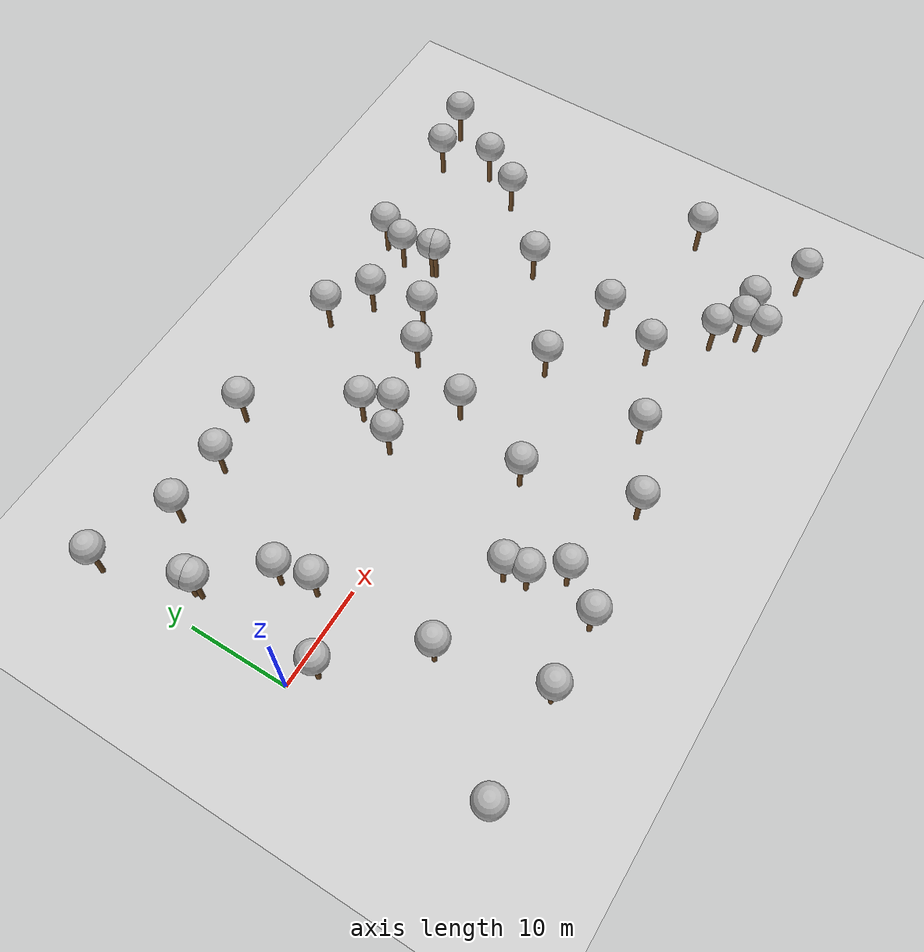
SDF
<sdf version='1.7'>
            <world name='default'>
                <light name='sun' type='directional'>
                <cast_shadows>1</cast_shadows>
                <pose>0 0 10 0 -0 0</pose>
                <diffuse>0.8 0.8 0.8 1</diffuse>
                <specular>0.2 0.2 0.2 1</specular>
                <attenuation>
                    <range>1000</range>
                    <constant>0.9</constant>
                    <linear>0.01</linear>
                    <quadratic>0.001</quadratic>
                </attenuation>
                <direction>-0.5 0.1 -0.9</direction>
                <spot>
                    <inner_angle>0</inner_angle>
                    <outer_angle>0</outer_angle>
                    <falloff>0</falloff>
                </spot>
                </light>
                <model name='ground_plane'>
                <static>1</static>
                <link name='link'>
                    <collision name='collision'>
                    <geometry>
                        <plane>
                        <normal>0 0 1</normal>
                        <size>100 100</size>
                        </plane>
                    </geometry>
                    <surface>
                        <contact>
                        <collide_bitmask>65535</collide_bitmask>
                        <ode/>
                        </contact>
                        <friction>
                        <ode>
                            <mu>100</mu>
                            <mu2>50</mu2>
                        </ode>
                        <torsional>
                            <ode/>
                        </torsional>
                        </friction>
                        <bounce/>
                    </surface>
                    <max_contacts>10</max_contacts>
                    </collision>
                    <visual name='visual'>
                    <cast_shadows>0</cast_shadows>
                    <geometry>
                        <plane>
                        <normal>0 0 1</normal>
                        <size>100 100</size>
                        </plane>
                    </geometry>
                    <material>
                        <script>
                        <uri>file://media/materials/scripts/gazebo.material</uri>
                        <name>Gazebo/Grey</name>
                        </script>
                    </material>
                    </visual>
                    <self_collide>0</self_collide>
                    <enable_wind>0</enable_wind>
                    <kinematic>0</kinematic>
                </link>
                </model>
                <gravity>0 0 -9.8</gravity>
                <magnetic_field>6e-06 2.3e-05 -4.2e-05</magnetic_field>
                <atmosphere type='adiabatic'/>
                <physics type='ode'>
                <max_step_size>0.001</max_step_size>
                <real_time_factor>1</real_time_factor>
                <real_time_update_rate>1000</real_time_update_rate>
                </physics>
                <scene>
                <ambient>0.4 0.4 0.4 1</ambient>
                <background>0.7 0.7 0.7 1</background>
                <shadows>1</shadows>
                </scene>
                <wind/>
                <spherical_coordinates>
                <surface_model>EARTH_WGS84</surface_model>
                <latitude_deg>0</latitude_deg>
                <longitude_deg>0</longitude_deg>
                <elevation>0</elevation>
                <heading_deg>0</heading_deg>
                </spherical_coordinates>

    <model name='tree_simple498'>
      <static>1</static>
      <link name='link'>
        <pose frame=''>0 0 0.1 0 -0 0</pose>
        <collision name='collision_trunk'>
          <pose frame=''>0 0 2 0 -0 0</pose>
          <geometry>
            <cylinder>
              <radius>0.25</radius>
              <length>4</length>
            </cylinder>
          </geometry>
        </collision>
        <collision name='collision_treetop'>
          <pose frame=''>0 0 5.2 0 -0 0</pose>
          <geometry>
            <sphere>
              <radius>1.5</radius>
            </sphere>
          </geometry>
        </collision>
        <visual name='trunk'>
          <pose frame=''>0 0 2 0 -0 0</pose>
          <geometry>
            <cylinder>
              <radius>0.25</radius>
              <length>4</length>
            </cylinder>
          </geometry>
          <material>
            <script>
              <uri>model://tree_simple/scripts</uri>
              <uri>model://tree_simple/materials/textures</uri>
              <name>TreeSimple/Trunk</name>
            </script>
          </material>
        </visual>
        <visual name='treetop'>
          <pose frame=''>0 0 5.2 0 -0 0</pose>
          <geometry>
            <sphere>
              <radius>1.5</radius>
            </sphere>
          </geometry>
          <material>
            <script>
              <uri>model://tree_simple/scripts</uri>
              <uri>model://tree_simple/materials/textures</uri>
              <name>TreeSimple/Treetop</name>
            </script>
          </material>
        </visual>
        <self_collide>0</self_collide>
        <kinematic>0</kinematic>
      </link>
      <pose frame=''>0.0 20.0 0 0 -0 0</pose>
    </model>
        <model name='tree_simple497'>
      <static>1</static>
      <link name='link'>
        <pose frame=''>0 0 0.1 0 -0 0</pose>
        <collision name='collision_trunk'>
          <pose frame=''>0 0 2 0 -0 0</pose>
          <geometry>
            <cylinder>
              <radius>0.25</radius>
              <length>4</length>
            </cylinder>
          </geometry>
        </collision>
        <collision name='collision_treetop'>
          <pose frame=''>0 0 5.2 0 -0 0</pose>
          <geometry>
            <sphere>
              <radius>1.5</radius>
            </sphere>
          </geometry>
        </collision>
        <visual name='trunk'>
          <pose frame=''>0 0 2 0 -0 0</pose>
          <geometry>
            <cylinder>
              <radius>0.25</radius>
              <length>4</length>
            </cylinder>
          </geometry>
          <material>
            <script>
              <uri>model://tree_simple/scripts</uri>
              <uri>model://tree_simple/materials/textures</uri>
              <name>TreeSimple/Trunk</name>
            </script>
          </material>
        </visual>
        <visual name='treetop'>
          <pose frame=''>0 0 5.2 0 -0 0</pose>
          <geometry>
            <sphere>
              <radius>1.5</radius>
            </sphere>
          </geometry>
          <material>
            <script>
              <uri>model://tree_simple/scripts</uri>
              <uri>model://tree_simple/materials/textures</uri>
              <name>TreeSimple/Treetop</name>
            </script>
          </material>
        </visual>
        <self_collide>0</self_collide>
        <kinematic>0</kinematic>
      </link>
      <pose frame=''>0.0 -20.0 0 0 -0 0</pose>
    </model>
        <model name='tree_simple496'>
      <static>1</static>
      <link name='link'>
        <pose frame=''>0 0 0.1 0 -0 0</pose>
        <collision name='collision_trunk'>
          <pose frame=''>0 0 2 0 -0 0</pose>
          <geometry>
            <cylinder>
              <radius>0.25</radius>
              <length>4</length>
            </cylinder>
          </geometry>
        </collision>
        <collision name='collision_treetop'>
          <pose frame=''>0 0 5.2 0 -0 0</pose>
          <geometry>
            <sphere>
              <radius>1.5</radius>
            </sphere>
          </geometry>
        </collision>
        <visual name='trunk'>
          <pose frame=''>0 0 2 0 -0 0</pose>
          <geometry>
            <cylinder>
              <radius>0.25</radius>
              <length>4</length>
            </cylinder>
          </geometry>
          <material>
            <script>
              <uri>model://tree_simple/scripts</uri>
              <uri>model://tree_simple/materials/textures</uri>
              <name>TreeSimple/Trunk</name>
            </script>
          </material>
        </visual>
        <visual name='treetop'>
          <pose frame=''>0 0 5.2 0 -0 0</pose>
          <geometry>
            <sphere>
              <radius>1.5</radius>
            </sphere>
          </geometry>
          <material>
            <script>
              <uri>model://tree_simple/scripts</uri>
              <uri>model://tree_simple/materials/textures</uri>
              <name>TreeSimple/Treetop</name>
            </script>
          </material>
        </visual>
        <self_collide>0</self_collide>
        <kinematic>0</kinematic>
      </link>
      <pose frame=''>60.0 20.0 0 0 -0 0</pose>
    </model>
        <model name='tree_simple495'>
      <static>1</static>
      <link name='link'>
        <pose frame=''>0 0 0.1 0 -0 0</pose>
        <collision name='collision_trunk'>
          <pose frame=''>0 0 2 0 -0 0</pose>
          <geometry>
            <cylinder>
              <radius>0.25</radius>
              <length>4</length>
            </cylinder>
          </geometry>
        </collision>
        <collision name='collision_treetop'>
          <pose frame=''>0 0 5.2 0 -0 0</pose>
          <geometry>
            <sphere>
              <radius>1.5</radius>
            </sphere>
          </geometry>
        </collision>
        <visual name='trunk'>
          <pose frame=''>0 0 2 0 -0 0</pose>
          <geometry>
            <cylinder>
              <radius>0.25</radius>
              <length>4</length>
            </cylinder>
          </geometry>
          <material>
            <script>
              <uri>model://tree_simple/scripts</uri>
              <uri>model://tree_simple/materials/textures</uri>
              <name>TreeSimple/Trunk</name>
            </script>
          </material>
        </visual>
        <visual name='treetop'>
          <pose frame=''>0 0 5.2 0 -0 0</pose>
          <geometry>
            <sphere>
              <radius>1.5</radius>
            </sphere>
          </geometry>
          <material>
            <script>
              <uri>model://tree_simple/scripts</uri>
              <uri>model://tree_simple/materials/textures</uri>
              <name>TreeSimple/Treetop</name>
            </script>
          </material>
        </visual>
        <self_collide>0</self_collide>
        <kinematic>0</kinematic>
      </link>
      <pose frame=''>60.0 -20.0 0 0 -0 0</pose>
    </model>
    <model name="tree_3_0"><pose frame="">54.29 -17.09 0 0 -0 0</pose><static>1</static><link name="link"><pose frame="">0 0 0.1 0 -0 0</pose><collision name="collision_trunk"><pose frame="">0 0 2 0 -0 0</pose><geometry><cylinder><radius>0.25</radius><length>4</length></cylinder></geometry></collision><collision name="collision_treetop"><pose frame="">0 0 5.2 0 -0 0</pose><geometry><sphere><radius>1.5</radius></sphere></geometry></collision><visual name="trunk"><pose frame="">0 0 2 0 -0 0</pose><geometry><cylinder><radius>0.25</radius><length>4</length></cylinder></geometry><material><script><uri>model://tree_simple/scripts</uri><uri>model://tree_simple/materials/textures</uri><name>TreeSimple/Trunk</name></script></material></visual><visual name="treetop"><pose frame="">0 0 5.2 0 -0 0</pose><geometry><sphere><radius>1.5</radius></sphere></geometry><material><script><uri>model://tree_simple/scripts</uri><uri>model://tree_simple/materials/textures</uri><name>TreeSimple/Treetop</name></script></material></visual><self_collide>0</self_collide><kinematic>0</kinematic></link></model><model name="tree_3_1"><pose frame="">7.58 17.01 0 0 -0 0</pose><static>1</static><link name="link"><pose frame="">0 0 0.1 0 -0 0</pose><collision name="collision_trunk"><pose frame="">0 0 2 0 -0 0</pose><geometry><cylinder><radius>0.25</radius><length>4</length></cylinder></geometry></collision><collision name="collision_treetop"><pose frame="">0 0 5.2 0 -0 0</pose><geometry><sphere><radius>1.5</radius></sphere></geometry></collision><visual name="trunk"><pose frame="">0 0 2 0 -0 0</pose><geometry><cylinder><radius>0.25</radius><length>4</length></cylinder></geometry><material><script><uri>model://tree_simple/scripts</uri><uri>model://tree_simple/materials/textures</uri><name>TreeSimple/Trunk</name></script></material></visual><visual name="treetop"><pose frame="">0 0 5.2 0 -0 0</pose><geometry><sphere><radius>1.5</radius></sphere></geometry><material><script><uri>model://tree_simple/scripts</uri><uri>model://tree_simple/materials/textures</uri><name>TreeSimple/Treetop</name></script></material></visual><self_collide>0</self_collide><kinematic>0</kinematic></link></model><model name="tree_3_2"><pose frame="">44.52 -10.88 0 0 -0 0</pose><static>1</static><link name="link"><pose frame="">0 0 0.1 0 -0 0</pose><collision name="collision_trunk"><pose frame="">0 0 2 0 -0 0</pose><geometry><cylinder><radius>0.25</radius><length>4</length></cylinder></geometry></collision><collision name="collision_treetop"><pose frame="">0 0 5.2 0 -0 0</pose><geometry><sphere><radius>1.5</radius></sphere></geometry></collision><visual name="trunk"><pose frame="">0 0 2 0 -0 0</pose><geometry><cylinder><radius>0.25</radius><length>4</length></cylinder></geometry><material><script><uri>model://tree_simple/scripts</uri><uri>model://tree_simple/materials/textures</uri><name>TreeSimple/Trunk</name></script></material></visual><visual name="treetop"><pose frame="">0 0 5.2 0 -0 0</pose><geometry><sphere><radius>1.5</radius></sphere></geometry><material><script><uri>model://tree_simple/scripts</uri><uri>model://tree_simple/materials/textures</uri><name>TreeSimple/Treetop</name></script></material></visual><self_collide>0</self_collide><kinematic>0</kinematic></link></model><model name="tree_3_3"><pose frame="">32.71 7.88 0 0 -0 0</pose><static>1</static><link name="link"><pose frame="">0 0 0.1 0 -0 0</pose><collision name="collision_trunk"><pose frame="">0 0 2 0 -0 0</pose><geometry><cylinder><radius>0.25</radius><length>4</length></cylinder></geometry></collision><collision name="collision_treetop"><pose frame="">0 0 5.2 0 -0 0</pose><geometry><sphere><radius>1.5</radius></sphere></geometry></collision><visual name="trunk"><pose frame="">0 0 2 0 -0 0</pose><geometry><cylinder><radius>0.25</radius><length>4</length></cylinder></geometry><material><script><uri>model://tree_simple/scripts</uri><uri>model://tree_simple/materials/textures</uri><name>TreeSimple/Trunk</name></script></material></visual><visual name="treetop"><pose frame="">0 0 5.2 0 -0 0</pose><geometry><sphere><radius>1.5</radius></sphere></geometry><material><script><uri>model://tree_simple/scripts</uri><uri>model://tree_simple/materials/textures</uri><name>TreeSimple/Treetop</name></script></material></visual><self_collide>0</self_collide><kinematic>0</kinematic></link></model><model name="tree_3_4"><pose frame="">29.39 -17.85 0 0 -0 0</pose><static>1</static><link name="link"><pose frame="">0 0 0.1 0 -0 0</pose><collision name="collision_trunk"><pose frame="">0 0 2 0 -0 0</pose><geometry><cylinder><radius>0.25</radius><length>4</length></cylinder></geometry></collision><collision name="collision_treetop"><pose frame="">0 0 5.2 0 -0 0</pose><geometry><sphere><radius>1.5</radius></sphere></geometry></collision><visual name="trunk"><pose frame="">0 0 2 0 -0 0</pose><geometry><cylinder><radius>0.25</radius><length>4</length></cylinder></geometry><material><script><uri>model://tree_simple/scripts</uri><uri>model://tree_simple/materials/textures</uri><name>TreeSimple/Trunk</name></script></material></visual><visual name="treetop"><pose frame="">0 0 5.2 0 -0 0</pose><geometry><sphere><radius>1.5</radius></sphere></geometry><material><script><uri>model://tree_simple/scripts</uri><uri>model://tree_simple/materials/textures</uri><name>TreeSimple/Treetop</name></script></material></visual><self_collide>0</self_collide><kinematic>0</kinematic></link></model><model name="tree_3_5"><pose frame="">2.56 11.59 0 0 -0 0</pose><static>1</static><link name="link"><pose frame="">0 0 0.1 0 -0 0</pose><collision name="collision_trunk"><pose frame="">0 0 2 0 -0 0</pose><geometry><cylinder><radius>0.25</radius><length>4</length></cylinder></geometry></collision><collision name="collision_treetop"><pose frame="">0 0 5.2 0 -0 0</pose><geometry><sphere><radius>1.5</radius></sphere></geometry></collision><visual name="trunk"><pose frame="">0 0 2 0 -0 0</pose><geometry><cylinder><radius>0.25</radius><length>4</length></cylinder></geometry><material><script><uri>model://tree_simple/scripts</uri><uri>model://tree_simple/materials/textures</uri><name>TreeSimple/Trunk</name></script></material></visual><visual name="treetop"><pose frame="">0 0 5.2 0 -0 0</pose><geometry><sphere><radius>1.5</radius></sphere></geometry><material><script><uri>model://tree_simple/scripts</uri><uri>model://tree_simple/materials/textures</uri><name>TreeSimple/Treetop</name></script></material></visual><self_collide>0</self_collide><kinematic>0</kinematic></link></model><model name="tree_3_6"><pose frame="">19.0 18.43 0 0 -0 0</pose><static>1</static><link name="link"><pose frame="">0 0 0.1 0 -0 0</pose><collision name="collision_trunk"><pose frame="">0 0 2 0 -0 0</pose><geometry><cylinder><radius>0.25</radius><length>4</length></cylinder></geometry></collision><collision name="collision_treetop"><pose frame="">0 0 5.2 0 -0 0</pose><geometry><sphere><radius>1.5</radius></sphere></geometry></collision><visual name="trunk"><pose frame="">0 0 2 0 -0 0</pose><geometry><cylinder><radius>0.25</radius><length>4</length></cylinder></geometry><material><script><uri>model://tree_simple/scripts</uri><uri>model://tree_simple/materials/textures</uri><name>TreeSimple/Trunk</name></script></material></visual><visual name="treetop"><pose frame="">0 0 5.2 0 -0 0</pose><geometry><sphere><radius>1.5</radius></sphere></geometry><material><script><uri>model://tree_simple/scripts</uri><uri>model://tree_simple/materials/textures</uri><name>TreeSimple/Treetop</name></script></material></visual><self_collide>0</self_collide><kinematic>0</kinematic></link></model><model name="tree_3_7"><pose frame="">17.84 -10.69 0 0 -0 0</pose><static>1</static><link name="link"><pose frame="">0 0 0.1 0 -0 0</pose><collision name="collision_trunk"><pose frame="">0 0 2 0 -0 0</pose><geometry><cylinder><radius>0.25</radius><length>4</length></cylinder></geometry></collision><collision name="collision_treetop"><pose frame="">0 0 5.2 0 -0 0</pose><geometry><sphere><radius>1.5</radius></sphere></geometry></collision><visual name="trunk"><pose frame="">0 0 2 0 -0 0</pose><geometry><cylinder><radius>0.25</radius><length>4</length></cylinder></geometry><material><script><uri>model://tree_simple/scripts</uri><uri>model://tree_simple/materials/textures</uri><name>TreeSimple/Trunk</name></script></material></visual><visual name="treetop"><pose frame="">0 0 5.2 0 -0 0</pose><geometry><sphere><radius>1.5</radius></sphere></geometry><material><script><uri>model://tree_simple/scripts</uri><uri>model://tree_simple/materials/textures</uri><name>TreeSimple/Treetop</name></script></material></visual><self_collide>0</self_collide><kinematic>0</kinematic></link></model><model name="tree_3_8"><pose frame="">51.67 -19.39 0 0 -0 0</pose><static>1</static><link name="link"><pose frame="">0 0 0.1 0 -0 0</pose><collision name="collision_trunk"><pose frame="">0 0 2 0 -0 0</pose><geometry><cylinder><radius>0.25</radius><length>4</length></cylinder></geometry></collision><collision name="collision_treetop"><pose frame="">0 0 5.2 0 -0 0</pose><geometry><sphere><radius>1.5</radius></sphere></geometry></collision><visual name="trunk"><pose frame="">0 0 2 0 -0 0</pose><geometry><cylinder><radius>0.25</radius><length>4</length></cylinder></geometry><material><script><uri>model://tree_simple/scripts</uri><uri>model://tree_simple/materials/textures</uri><name>TreeSimple/Trunk</name></script></material></visual><visual name="treetop"><pose frame="">0 0 5.2 0 -0 0</pose><geometry><sphere><radius>1.5</radius></sphere></geometry><material><script><uri>model://tree_simple/scripts</uri><uri>model://tree_simple/materials/textures</uri><name>TreeSimple/Treetop</name></script></material></visual><self_collide>0</self_collide><kinematic>0</kinematic></link></model><model name="tree_3_9"><pose frame="">26.33 6.29 0 0 -0 0</pose><static>1</static><link name="link"><pose frame="">0 0 0.1 0 -0 0</pose><collision name="collision_trunk"><pose frame="">0 0 2 0 -0 0</pose><geometry><cylinder><radius>0.25</radius><length>4</length></cylinder></geometry></collision><collision name="collision_treetop"><pose frame="">0 0 5.2 0 -0 0</pose><geometry><sphere><radius>1.5</radius></sphere></geometry></collision><visual name="trunk"><pose frame="">0 0 2 0 -0 0</pose><geometry><cylinder><radius>0.25</radius><length>4</length></cylinder></geometry><material><script><uri>model://tree_simple/scripts</uri><uri>model://tree_simple/materials/textures</uri><name>TreeSimple/Trunk</name></script></material></visual><visual name="treetop"><pose frame="">0 0 5.2 0 -0 0</pose><geometry><sphere><radius>1.5</radius></sphere></geometry><material><script><uri>model://tree_simple/scripts</uri><uri>model://tree_simple/materials/textures</uri><name>TreeSimple/Treetop</name></script></material></visual><self_collide>0</self_collide><kinematic>0</kinematic></link></model><model name="tree_3_10"><pose frame="">36.91 9.98 0 0 -0 0</pose><static>1</static><link name="link"><pose frame="">0 0 0.1 0 -0 0</pose><collision name="collision_trunk"><pose frame="">0 0 2 0 -0 0</pose><geometry><cylinder><radius>0.25</radius><length>4</length></cylinder></geometry></collision><collision name="collision_treetop"><pose frame="">0 0 5.2 0 -0 0</pose><geometry><sphere><radius>1.5</radius></sphere></geometry></collision><visual name="trunk"><pose frame="">0 0 2 0 -0 0</pose><geometry><cylinder><radius>0.25</radius><length>4</length></cylinder></geometry><material><script><uri>model://tree_simple/scripts</uri><uri>model://tree_simple/materials/textures</uri><name>TreeSimple/Trunk</name></script></material></visual><visual name="treetop"><pose frame="">0 0 5.2 0 -0 0</pose><geometry><sphere><radius>1.5</radius></sphere></geometry><material><script><uri>model://tree_simple/scripts</uri><uri>model://tree_simple/materials/textures</uri><name>TreeSimple/Treetop</name></script></material></visual><self_collide>0</self_collide><kinematic>0</kinematic></link></model><model name="tree_3_11"><pose frame="">42.86 12.26 0 0 -0 0</pose><static>1</static><link name="link"><pose frame="">0 0 0.1 0 -0 0</pose><collision name="collision_trunk"><pose frame="">0 0 2 0 -0 0</pose><geometry><cylinder><radius>0.25</radius><length>4</length></cylinder></geometry></collision><collision name="collision_treetop"><pose frame="">0 0 5.2 0 -0 0</pose><geometry><sphere><radius>1.5</radius></sphere></geometry></collision><visual name="trunk"><pose frame="">0 0 2 0 -0 0</pose><geometry><cylinder><radius>0.25</radius><length>4</length></cylinder></geometry><material><script><uri>model://tree_simple/scripts</uri><uri>model://tree_simple/materials/textures</uri><name>TreeSimple/Trunk</name></script></material></visual><visual name="treetop"><pose frame="">0 0 5.2 0 -0 0</pose><geometry><sphere><radius>1.5</radius></sphere></geometry><material><script><uri>model://tree_simple/scripts</uri><uri>model://tree_simple/materials/textures</uri><name>TreeSimple/Treetop</name></script></material></visual><self_collide>0</self_collide><kinematic>0</kinematic></link></model><model name="tree_3_12"><pose frame="">49.38 -15.42 0 0 -0 0</pose><static>1</static><link name="link"><pose frame="">0 0 0.1 0 -0 0</pose><collision name="collision_trunk"><pose frame="">0 0 2 0 -0 0</pose><geometry><cylinder><radius>0.25</radius><length>4</length></cylinder></geometry></collision><collision name="collision_treetop"><pose frame="">0 0 5.2 0 -0 0</pose><geometry><sphere><radius>1.5</radius></sphere></geometry></collision><visual name="trunk"><pose frame="">0 0 2 0 -0 0</pose><geometry><cylinder><radius>0.25</radius><length>4</length></cylinder></geometry><material><script><uri>model://tree_simple/scripts</uri><uri>model://tree_simple/materials/textures</uri><name>TreeSimple/Trunk</name></script></material></visual><visual name="treetop"><pose frame="">0 0 5.2 0 -0 0</pose><geometry><sphere><radius>1.5</radius></sphere></geometry><material><script><uri>model://tree_simple/scripts</uri><uri>model://tree_simple/materials/textures</uri><name>TreeSimple/Treetop</name></script></material></visual><self_collide>0</self_collide><kinematic>0</kinematic></link></model><model name="tree_3_13"><pose frame="">56.66 14.27 0 0 -0 0</pose><static>1</static><link name="link"><pose frame="">0 0 0.1 0 -0 0</pose><collision name="collision_trunk"><pose frame="">0 0 2 0 -0 0</pose><geometry><cylinder><radius>0.25</radius><length>4</length></cylinder></geometry></collision><collision name="collision_treetop"><pose frame="">0 0 5.2 0 -0 0</pose><geometry><sphere><radius>1.5</radius></sphere></geometry></collision><visual name="trunk"><pose frame="">0 0 2 0 -0 0</pose><geometry><cylinder><radius>0.25</radius><length>4</length></cylinder></geometry><material><script><uri>model://tree_simple/scripts</uri><uri>model://tree_simple/materials/textures</uri><name>TreeSimple/Trunk</name></script></material></visual><visual name="treetop"><pose frame="">0 0 5.2 0 -0 0</pose><geometry><sphere><radius>1.5</radius></sphere></geometry><material><script><uri>model://tree_simple/scripts</uri><uri>model://tree_simple/materials/textures</uri><name>TreeSimple/Treetop</name></script></material></visual><self_collide>0</self_collide><kinematic>0</kinematic></link></model><model name="tree_3_14"><pose frame="">36.46 -14.38 0 0 -0 0</pose><static>1</static><link name="link"><pose frame="">0 0 0.1 0 -0 0</pose><collision name="collision_trunk"><pose frame="">0 0 2 0 -0 0</pose><geometry><cylinder><radius>0.25</radius><length>4</length></cylinder></geometry></collision><collision name="collision_treetop"><pose frame="">0 0 5.2 0 -0 0</pose><geometry><sphere><radius>1.5</radius></sphere></geometry></collision><visual name="trunk"><pose frame="">0 0 2 0 -0 0</pose><geometry><cylinder><radius>0.25</radius><length>4</length></cylinder></geometry><material><script><uri>model://tree_simple/scripts</uri><uri>model://tree_simple/materials/textures</uri><name>TreeSimple/Trunk</name></script></material></visual><visual name="treetop"><pose frame="">0 0 5.2 0 -0 0</pose><geometry><sphere><radius>1.5</radius></sphere></geometry><material><script><uri>model://tree_simple/scripts</uri><uri>model://tree_simple/materials/textures</uri><name>TreeSimple/Treetop</name></script></material></visual><self_collide>0</self_collide><kinematic>0</kinematic></link></model><model name="tree_3_15"><pose frame="">8.58 -9.4 0 0 -0 0</pose><static>1</static><link name="link"><pose frame="">0 0 0.1 0 -0 0</pose><collision name="collision_trunk"><pose frame="">0 0 2 0 -0 0</pose><geometry><cylinder><radius>0.25</radius><length>4</length></cylinder></geometry></collision><collision name="collision_treetop"><pose frame="">0 0 5.2 0 -0 0</pose><geometry><sphere><radius>1.5</radius></sphere></geometry></collision><visual name="trunk"><pose frame="">0 0 2 0 -0 0</pose><geometry><cylinder><radius>0.25</radius><length>4</length></cylinder></geometry><material><script><uri>model://tree_simple/scripts</uri><uri>model://tree_simple/materials/textures</uri><name>TreeSimple/Trunk</name></script></material></visual><visual name="treetop"><pose frame="">0 0 5.2 0 -0 0</pose><geometry><sphere><radius>1.5</radius></sphere></geometry><material><script><uri>model://tree_simple/scripts</uri><uri>model://tree_simple/materials/textures</uri><name>TreeSimple/Treetop</name></script></material></visual><self_collide>0</self_collide><kinematic>0</kinematic></link></model><model name="tree_3_16"><pose frame="">42.22 15.74 0 0 -0 0</pose><static>1</static><link name="link"><pose frame="">0 0 0.1 0 -0 0</pose><collision name="collision_trunk"><pose frame="">0 0 2 0 -0 0</pose><geometry><cylinder><radius>0.25</radius><length>4</length></cylinder></geometry></collision><collision name="collision_treetop"><pose frame="">0 0 5.2 0 -0 0</pose><geometry><sphere><radius>1.5</radius></sphere></geometry></collision><visual name="trunk"><pose frame="">0 0 2 0 -0 0</pose><geometry><cylinder><radius>0.25</radius><length>4</length></cylinder></geometry><material><script><uri>model://tree_simple/scripts</uri><uri>model://tree_simple/materials/textures</uri><name>TreeSimple/Trunk</name></script></material></visual><visual name="treetop"><pose frame="">0 0 5.2 0 -0 0</pose><geometry><sphere><radius>1.5</radius></sphere></geometry><material><script><uri>model://tree_simple/scripts</uri><uri>model://tree_simple/materials/textures</uri><name>TreeSimple/Treetop</name></script></material></visual><self_collide>0</self_collide><kinematic>0</kinematic></link></model><model name="tree_3_17"><pose frame="">2.15 -1.89 0 0 -0 0</pose><static>1</static><link name="link"><pose frame="">0 0 0.1 0 -0 0</pose><collision name="collision_trunk"><pose frame="">0 0 2 0 -0 0</pose><geometry><cylinder><radius>0.25</radius><length>4</length></cylinder></geometry></collision><collision name="collision_treetop"><pose frame="">0 0 5.2 0 -0 0</pose><geometry><sphere><radius>1.5</radius></sphere></geometry></collision><visual name="trunk"><pose frame="">0 0 2 0 -0 0</pose><geometry><cylinder><radius>0.25</radius><length>4</length></cylinder></geometry><material><script><uri>model://tree_simple/scripts</uri><uri>model://tree_simple/materials/textures</uri><name>TreeSimple/Trunk</name></script></material></visual><visual name="treetop"><pose frame="">0 0 5.2 0 -0 0</pose><geometry><sphere><radius>1.5</radius></sphere></geometry><material><script><uri>model://tree_simple/scripts</uri><uri>model://tree_simple/materials/textures</uri><name>TreeSimple/Treetop</name></script></material></visual><self_collide>0</self_collide><kinematic>0</kinematic></link></model><model name="tree_3_18"><pose frame="">2.69 10.95 0 0 -0 0</pose><static>1</static><link name="link"><pose frame="">0 0 0.1 0 -0 0</pose><collision name="collision_trunk"><pose frame="">0 0 2 0 -0 0</pose><geometry><cylinder><radius>0.25</radius><length>4</length></cylinder></geometry></collision><collision name="collision_treetop"><pose frame="">0 0 5.2 0 -0 0</pose><geometry><sphere><radius>1.5</radius></sphere></geometry></collision><visual name="trunk"><pose frame="">0 0 2 0 -0 0</pose><geometry><cylinder><radius>0.25</radius><length>4</length></cylinder></geometry><material><script><uri>model://tree_simple/scripts</uri><uri>model://tree_simple/materials/textures</uri><name>TreeSimple/Trunk</name></script></material></visual><visual name="treetop"><pose frame="">0 0 5.2 0 -0 0</pose><geometry><sphere><radius>1.5</radius></sphere></geometry><material><script><uri>model://tree_simple/scripts</uri><uri>model://tree_simple/materials/textures</uri><name>TreeSimple/Treetop</name></script></material></visual><self_collide>0</self_collide><kinematic>0</kinematic></link></model><model name="tree_3_19"><pose frame="">23.22 4.9 0 0 -0 0</pose><static>1</static><link name="link"><pose frame="">0 0 0.1 0 -0 0</pose><collision name="collision_trunk"><pose frame="">0 0 2 0 -0 0</pose><geometry><cylinder><radius>0.25</radius><length>4</length></cylinder></geometry></collision><collision name="collision_treetop"><pose frame="">0 0 5.2 0 -0 0</pose><geometry><sphere><radius>1.5</radius></sphere></geometry></collision><visual name="trunk"><pose frame="">0 0 2 0 -0 0</pose><geometry><cylinder><radius>0.25</radius><length>4</length></cylinder></geometry><material><script><uri>model://tree_simple/scripts</uri><uri>model://tree_simple/materials/textures</uri><name>TreeSimple/Trunk</name></script></material></visual><visual name="treetop"><pose frame="">0 0 5.2 0 -0 0</pose><geometry><sphere><radius>1.5</radius></sphere></geometry><material><script><uri>model://tree_simple/scripts</uri><uri>model://tree_simple/materials/textures</uri><name>TreeSimple/Treetop</name></script></material></visual><self_collide>0</self_collide><kinematic>0</kinematic></link></model>
    <model name="tree_1_21">
  <pose frame="">17.85 -19.34 0 0 -0 0</pose>
  <static>1</static>
  <link name="link">
    <pose frame="">0 0 0.1 0 -0 0</pose>
    <collision name="collision_trunk"><pose frame="">0 0 2 0 -0 0</pose><geometry><cylinder><radius>0.25</radius><length>4</length></cylinder></geometry></collision>
    <collision name="collision_treetop"><pose frame="">0 0 5.2 0 -0 0</pose><geometry><sphere><radius>1.5</radius></sphere></geometry></collision>
    <visual name="trunk"><pose frame="">0 0 2 0 -0 0</pose><geometry><cylinder><radius>0.25</radius><length>4</length></cylinder></geometry><material><script><uri>model://tree_simple/scripts</uri><uri>model://tree_simple/materials/textures</uri><name>TreeSimple/Trunk</name></script></material></visual>
    <visual name="treetop"><pose frame="">0 0 5.2 0 -0 0</pose><geometry><sphere><radius>1.5</radius></sphere></geometry><material><script><uri>model://tree_simple/scripts</uri><uri>model://tree_simple/materials/textures</uri><name>TreeSimple/Treetop</name></script></material></visual>
    <self_collide>0</self_collide><kinematic>0</kinematic>
  </link>
</model>
<model name="tree_1_22">
  <pose frame="">54.38 10.21 0 0 -0 0</pose>
  <static>1</static>
  <link name="link">
    <pose frame="">0 0 0.1 0 -0 0</pose>
    <collision name="collision_trunk"><pose frame="">0 0 2 0 -0 0</pose><geometry><cylinder><radius>0.25</radius><length>4</length></cylinder></geometry></collision>
    <collision name="collision_treetop"><pose frame="">0 0 5.2 0 -0 0</pose><geometry><sphere><radius>1.5</radius></sphere></geometry></collision>
    <visual name="trunk"><pose frame="">0 0 2 0 -0 0</pose><geometry><cylinder><radius>0.25</radius><length>4</length></cylinder></geometry><material><script><uri>model://tree_simple/scripts</uri><uri>model://tree_simple/materials/textures</uri><name>TreeSimple/Trunk</name></script></material></visual>
    <visual name="treetop"><pose frame="">0 0 5.2 0 -0 0</pose><geometry><sphere><radius>1.5</radius></sphere></geometry><material><script><uri>model://tree_simple/scripts</uri><uri>model://tree_simple/materials/textures</uri><name>TreeSimple/Treetop</name></script></material></visual>
    <self_collide>0</self_collide><kinematic>0</kinematic>
  </link>
</model>
<model name="tree_1_23">
  <pose frame="">26.74 -7.12 0 0 -0 0</pose>
  <static>1</static>
  <link name="link">
    <pose frame="">0 0 0.1 0 -0 0</pose>
    <collision name="collision_trunk"><pose frame="">0 0 2 0 -0 0</pose><geometry><cylinder><radius>0.25</radius><length>4</length></cylinder></geometry></collision>
    <collision name="collision_treetop"><pose frame="">0 0 5.2 0 -0 0</pose><geometry><sphere><radius>1.5</radius></sphere></geometry></collision>
    <visual name="trunk"><pose frame="">0 0 2 0 -0 0</pose><geometry><cylinder><radius>0.25</radius><length>4</length></cylinder></geometry><material><script><uri>model://tree_simple/scripts</uri><uri>model://tree_simple/materials/textures</uri><name>TreeSimple/Trunk</name></script></material></visual>
    <visual name="treetop"><pose frame="">0 0 5.2 0 -0 0</pose><geometry><sphere><radius>1.5</radius></sphere></geometry><material><script><uri>model://tree_simple/scripts</uri><uri>model://tree_simple/materials/textures</uri><name>TreeSimple/Treetop</name></script></material></visual>
    <self_collide>0</self_collide><kinematic>0</kinematic>
  </link>
</model>
<model name="tree_1_24">
  <pose frame="">43.19 18.36 0 0 -0 0</pose>
  <static>1</static>
  <link name="link">
    <pose frame="">0 0 0.1 0 -0 0</pose>
    <collision name="collision_trunk"><pose frame="">0 0 2 0 -0 0</pose><geometry><cylinder><radius>0.25</radius><length>4</length></cylinder></geometry></collision>
    <collision name="collision_treetop"><pose frame="">0 0 5.2 0 -0 0</pose><geometry><sphere><radius>1.5</radius></sphere></geometry></collision>
    <visual name="trunk"><pose frame="">0 0 2 0 -0 0</pose><geometry><cylinder><radius>0.25</radius><length>4</length></cylinder></geometry><material><script><uri>model://tree_simple/scripts</uri><uri>model://tree_simple/materials/textures</uri><name>TreeSimple/Trunk</name></script></material></visual>
    <visual name="treetop"><pose frame="">0 0 5.2 0 -0 0</pose><geometry><sphere><radius>1.5</radius></sphere></geometry><material><script><uri>model://tree_simple/scripts</uri><uri>model://tree_simple/materials/textures</uri><name>TreeSimple/Treetop</name></script></material></visual>
    <self_collide>0</self_collide><kinematic>0</kinematic>
  </link>
</model>
<model name="tree_1_25">
  <pose frame="">8.12 2.47 0 0 -0 0</pose>
  <static>1</static>
  <link name="link">
    <pose frame="">0 0 0.1 0 -0 0</pose>
    <collision name="collision_trunk"><pose frame="">0 0 2 0 -0 0</pose><geometry><cylinder><radius>0.25</radius><length>4</length></cylinder></geometry></collision>
    <collision name="collision_treetop"><pose frame="">0 0 5.2 0 -0 0</pose><geometry><sphere><radius>1.5</radius></sphere></geometry></collision>
    <visual name="trunk"><pose frame="">0 0 2 0 -0 0</pose><geometry><cylinder><radius>0.25</radius><length>4</length></cylinder></geometry><material><script><uri>model://tree_simple/scripts</uri><uri>model://tree_simple/materials/textures</uri><name>TreeSimple/Trunk</name></script></material></visual>
    <visual name="treetop"><pose frame="">0 0 5.2 0 -0 0</pose><geometry><sphere><radius>1.5</radius></sphere></geometry><material><script><uri>model://tree_simple/scripts</uri><uri>model://tree_simple/materials/textures</uri><name>TreeSimple/Treetop</name></script></material></visual>
    <self_collide>0</self_collide><kinematic>0</kinematic>
  </link>
</model>
<model name="tree_1_26">
  <pose frame="">59.87 -8.79 0 0 -0 0</pose>
  <static>1</static>
  <link name="link">
    <pose frame="">0 0 0.1 0 -0 0</pose>
    <collision name="collision_trunk"><pose frame="">0 0 2 0 -0 0</pose><geometry><cylinder><radius>0.25</radius><length>4</length></cylinder></geometry></collision>
    <collision name="collision_treetop"><pose frame="">0 0 5.2 0 -0 0</pose><geometry><sphere><radius>1.5</radius></sphere></geometry></collision>
    <visual name="trunk"><pose frame="">0 0 2 0 -0 0</pose><geometry><cylinder><radius>0.25</radius><length>4</length></cylinder></geometry><material><script><uri>model://tree_simple/scripts</uri><uri>model://tree_simple/materials/textures</uri><name>TreeSimple/Trunk</name></script></material></visual>
    <visual name="treetop"><pose frame="">0 0 5.2 0 -0 0</pose><geometry><sphere><radius>1.5</radius></sphere></geometry><material><script><uri>model://tree_simple/scripts</uri><uri>model://tree_simple/materials/textures</uri><name>TreeSimple/Treetop</name></script></material></visual>
    <self_collide>0</self_collide><kinematic>0</kinematic>
  </link>
</model>
<model name="tree_1_27">
  <pose frame="">35.96 15.28 0 0 -0 0</pose>
  <static>1</static>
  <link name="link">
    <pose frame="">0 0 0.1 0 -0 0</pose>
    <collision name="collision_trunk"><pose frame="">0 0 2 0 -0 0</pose><geometry><cylinder><radius>0.25</radius><length>4</length></cylinder></geometry></collision>
    <collision name="collision_treetop"><pose frame="">0 0 5.2 0 -0 0</pose><geometry><sphere><radius>1.5</radius></sphere></geometry></collision>
    <visual name="trunk"><pose frame="">0 0 2 0 -0 0</pose><geometry><cylinder><radius>0.25</radius><length>4</length></cylinder></geometry><material><script><uri>model://tree_simple/scripts</uri><uri>model://tree_simple/materials/textures</uri><name>TreeSimple/Trunk</name></script></material></visual>
    <visual name="treetop"><pose frame="">0 0 5.2 0 -0 0</pose><geometry><sphere><radius>1.5</radius></sphere></geometry><material><script><uri>model://tree_simple/scripts</uri><uri>model://tree_simple/materials/textures</uri><name>TreeSimple/Treetop</name></script></material></visual>
    <self_collide>0</self_collide><kinematic>0</kinematic>
  </link>
</model>
<model name="tree_1_28">
  <pose frame="">20.44 -15.61 0 0 -0 0</pose>
  <static>1</static>
  <link name="link">
    <pose frame="">0 0 0.1 0 -0 0</pose>
    <collision name="collision_trunk"><pose frame="">0 0 2 0 -0 0</pose><geometry><cylinder><radius>0.25</radius><length>4</length></cylinder></geometry></collision>
    <collision name="collision_treetop"><pose frame="">0 0 5.2 0 -0 0</pose><geometry><sphere><radius>1.5</radius></sphere></geometry></collision>
    <visual name="trunk"><pose frame="">0 0 2 0 -0 0</pose><geometry><cylinder><radius>0.25</radius><length>4</length></cylinder></geometry><material><script><uri>model://tree_simple/scripts</uri><uri>model://tree_simple/materials/textures</uri><name>TreeSimple/Trunk</name></script></material></visual>
    <visual name="treetop"><pose frame="">0 0 5.2 0 -0 0</pose><geometry><sphere><radius>1.5</radius></sphere></geometry><material><script><uri>model://tree_simple/scripts</uri><uri>model://tree_simple/materials/textures</uri><name>TreeSimple/Treetop</name></script></material></visual>
    <self_collide>0</self_collide><kinematic>0</kinematic>
  </link>
</model>
<model name="tree_1_29">
  <pose frame="">47.83 3.72 0 0 -0 0</pose>
  <static>1</static>
  <link name="link">
    <pose frame="">0 0 0.1 0 -0 0</pose>
    <collision name="collision_trunk"><pose frame="">0 0 2 0 -0 0</pose><geometry><cylinder><radius>0.25</radius><length>4</length></cylinder></geometry></collision>
    <collision name="collision_treetop"><pose frame="">0 0 5.2 0 -0 0</pose><geometry><sphere><radius>1.5</radius></sphere></geometry></collision>
    <visual name="trunk"><pose frame="">0 0 2 0 -0 0</pose><geometry><cylinder><radius>0.25</radius><length>4</length></cylinder></geometry><material><script><uri>model://tree_simple/scripts</uri><uri>model://tree_simple/materials/textures</uri><name>TreeSimple/Trunk</name></script></material></visual>
    <visual name="treetop"><pose frame="">0 0 5.2 0 -0 0</pose><geometry><sphere><radius>1.5</radius></sphere></geometry><material><script><uri>model://tree_simple/scripts</uri><uri>model://tree_simple/materials/textures</uri><name>TreeSimple/Treetop</name></script></material></visual>
    <self_collide>0</self_collide><kinematic>0</kinematic>
  </link>
</model>
<model name="tree_1_30">
  <pose frame="">13.57 16.84 0 0 -0 0</pose>
  <static>1</static>
  <link name="link">
    <pose frame="">0 0 0.1 0 -0 0</pose>
    <collision name="collision_trunk"><pose frame="">0 0 2 0 -0 0</pose><geometry><cylinder><radius>0.25</radius><length>4</length></cylinder></geometry></collision>
    <collision name="collision_treetop"><pose frame="">0 0 5.2 0 -0 0</pose><geometry><sphere><radius>1.5</radius></sphere></geometry></collision>
    <visual name="trunk"><pose frame="">0 0 2 0 -0 0</pose><geometry><cylinder><radius>0.25</radius><length>4</length></cylinder></geometry><material><script><uri>model://tree_simple/scripts</uri><uri>model://tree_simple/materials/textures</uri><name>TreeSimple/Trunk</name></script></material></visual>
    <visual name="treetop"><pose frame="">0 0 5.2 0 -0 0</pose><geometry><sphere><radius>1.5</radius></sphere></geometry><material><script><uri>model://tree_simple/scripts</uri><uri>model://tree_simple/materials/textures</uri><name>TreeSimple/Treetop</name></script></material></visual>
    <self_collide>0</self_collide><kinematic>0</kinematic>
  </link>
</model>
<model name="tree_1_31">
  <pose frame="">38.25 -3.18 0 0 -0 0</pose>
  <static>1</static>
  <link name="link">
    <pose frame="">0 0 0.1 0 -0 0</pose>
    <collision name="collision_trunk"><pose frame="">0 0 2 0 -0 0</pose><geometry><cylinder><radius>0.25</radius><length>4</length></cylinder></geometry></collision>
    <collision name="collision_treetop"><pose frame="">0 0 5.2 0 -0 0</pose><geometry><sphere><radius>1.5</radius></sphere></geometry></collision>
    <visual name="trunk"><pose frame="">0 0 2 0 -0 0</pose><geometry><cylinder><radius>0.25</radius><length>4</length></cylinder></geometry><material><script><uri>model://tree_simple/scripts</uri><uri>model://tree_simple/materials/textures</uri><name>TreeSimple/Trunk</name></script></material></visual>
    <visual name="treetop"><pose frame="">0 0 5.2 0 -0 0</pose><geometry><sphere><radius>1.5</radius></sphere></geometry><material><script><uri>model://tree_simple/scripts</uri><uri>model://tree_simple/materials/textures</uri><name>TreeSimple/Treetop</name></script></material></visual>
    <self_collide>0</self_collide><kinematic>0</kinematic>
  </link>
</model>
<model name="tree_1_32">
  <pose frame="">24.91 8.97 0 0 -0 0</pose>
  <static>1</static>
  <link name="link">
    <pose frame="">0 0 0.1 0 -0 0</pose>
    <collision name="collision_trunk"><pose frame="">0 0 2 0 -0 0</pose><geometry><cylinder><radius>0.25</radius><length>4</length></cylinder></geometry></collision>
    <collision name="collision_treetop"><pose frame="">0 0 5.2 0 -0 0</pose><geometry><sphere><radius>1.5</radius></sphere></geometry></collision>
    <visual name="trunk"><pose frame="">0 0 2 0 -0 0</pose><geometry><cylinder><radius>0.25</radius><length>4</length></cylinder></geometry><material><script><uri>model://tree_simple/scripts</uri><uri>model://tree_simple/materials/textures</uri><name>TreeSimple/Trunk</name></script></material></visual>
    <visual name="treetop"><pose frame="">0 0 5.2 0 -0 0</pose><geometry><sphere><radius>1.5</radius></sphere></geometry><material><script><uri>model://tree_simple/scripts</uri><uri>model://tree_simple/materials/textures</uri><name>TreeSimple/Treetop</name></script></material></visual>
    <self_collide>0</self_collide><kinematic>0</kinematic>
  </link>
</model>
<model name="tree_1_33">
  <pose frame="">51.69 -17.23 0 0 -0 0</pose>
  <static>1</static>
  <link name="link">
    <pose frame="">0 0 0.1 0 -0 0</pose>
    <collision name="collision_trunk"><pose frame="">0 0 2 0 -0 0</pose><geometry><cylinder><radius>0.25</radius><length>4</length></cylinder></geometry></collision>
    <collision name="collision_treetop"><pose frame="">0 0 5.2 0 -0 0</pose><geometry><sphere><radius>1.5</radius></sphere></geometry></collision>
    <visual name="trunk"><pose frame="">0 0 2 0 -0 0</pose><geometry><cylinder><radius>0.25</radius><length>4</length></cylinder></geometry><material><script><uri>model://tree_simple/scripts</uri><uri>model://tree_simple/materials/textures</uri><name>TreeSimple/Trunk</name></script></material></visual>
    <visual name="treetop"><pose frame="">0 0 5.2 0 -0 0</pose><geometry><sphere><radius>1.5</radius></sphere></geometry><material><script><uri>model://tree_simple/scripts</uri><uri>model://tree_simple/materials/textures</uri><name>TreeSimple/Treetop</name></script></material></visual>
    <self_collide>0</self_collide><kinematic>0</kinematic>
  </link>
</model>
<model name="tree_1_34">
  <pose frame="">7.36 5.81 0 0 -0 0</pose>
  <static>1</static>
  <link name="link">
    <pose frame="">0 0 0.1 0 -0 0</pose>
    <collision name="collision_trunk"><pose frame="">0 0 2 0 -0 0</pose><geometry><cylinder><radius>0.25</radius><length>4</length></cylinder></geometry></collision>
    <collision name="collision_treetop"><pose frame="">0 0 5.2 0 -0 0</pose><geometry><sphere><radius>1.5</radius></sphere></geometry></collision>
    <visual name="trunk"><pose frame="">0 0 2 0 -0 0</pose><geometry><cylinder><radius>0.25</radius><length>4</length></cylinder></geometry><material><script><uri>model://tree_simple/scripts</uri><uri>model://tree_simple/materials/textures</uri><name>TreeSimple/Trunk</name></script></material></visual>
    <visual name="treetop"><pose frame="">0 0 5.2 0 -0 0</pose><geometry><sphere><radius>1.5</radius></sphere></geometry><material><script><uri>model://tree_simple/scripts</uri><uri>model://tree_simple/materials/textures</uri><name>TreeSimple/Treetop</name></script></material></visual>
    <self_collide>0</self_collide><kinematic>0</kinematic>
  </link>
</model>
<model name="tree_1_35">
  <pose frame="">42.75 12.64 0 0 -0 0</pose>
  <static>1</static>
  <link name="link">
    <pose frame="">0 0 0.1 0 -0 0</pose>
    <collision name="collision_trunk"><pose frame="">0 0 2 0 -0 0</pose><geometry><cylinder><radius>0.25</radius><length>4</length></cylinder></geometry></collision>
    <collision name="collision_treetop"><pose frame="">0 0 5.2 0 -0 0</pose><geometry><sphere><radius>1.5</radius></sphere></geometry></collision>
    <visual name="trunk"><pose frame="">0 0 2 0 -0 0</pose><geometry><cylinder><radius>0.25</radius><length>4</length></cylinder></geometry><material><script><uri>model://tree_simple/scripts</uri><uri>model://tree_simple/materials/textures</uri><name>TreeSimple/Trunk</name></script></material></visual>
    <visual name="treetop"><pose frame="">0 0 5.2 0 -0 0</pose><geometry><sphere><radius>1.5</radius></sphere></geometry><material><script><uri>model://tree_simple/scripts</uri><uri>model://tree_simple/materials/textures</uri><name>TreeSimple/Treetop</name></script></material></visual>
    <self_collide>0</self_collide><kinematic>0</kinematic>
  </link>
</model>
<model name="tree_1_36">
  <pose frame="">18.23 -12.78 0 0 -0 0</pose>
  <static>1</static>
  <link name="link">
    <pose frame="">0 0 0.1 0 -0 0</pose>
    <collision name="collision_trunk"><pose frame="">0 0 2 0 -0 0</pose><geometry><cylinder><radius>0.25</radius><length>4</length></cylinder></geometry></collision>
    <collision name="collision_treetop"><pose frame="">0 0 5.2 0 -0 0</pose><geometry><sphere><radius>1.5</radius></sphere></geometry></collision>
    <visual name="trunk"><pose frame="">0 0 2 0 -0 0</pose><geometry><cylinder><radius>0.25</radius><length>4</length></cylinder></geometry><material><script><uri>model://tree_simple/scripts</uri><uri>model://tree_simple/materials/textures</uri><name>TreeSimple/Trunk</name></script></material></visual>
    <visual name="treetop"><pose frame="">0 0 5.2 0 -0 0</pose><geometry><sphere><radius>1.5</radius></sphere></geometry><material><script><uri>model://tree_simple/scripts</uri><uri>model://tree_simple/materials/textures</uri><name>TreeSimple/Treetop</name></script></material></visual>
    <self_collide>0</self_collide><kinematic>0</kinematic>
  </link>
</model>
<model name="tree_1_37">
  <pose frame="">55.12 19.17 0 0 -0 0</pose>
  <static>1</static>
  <link name="link">
    <pose frame="">0 0 0.1 0 -0 0</pose>
    <collision name="collision_trunk"><pose frame="">0 0 2 0 -0 0</pose><geometry><cylinder><radius>0.25</radius><length>4</length></cylinder></geometry></collision>
    <collision name="collision_treetop"><pose frame="">0 0 5.2 0 -0 0</pose><geometry><sphere><radius>1.5</radius></sphere></geometry></collision>
    <visual name="trunk"><pose frame="">0 0 2 0 -0 0</pose><geometry><cylinder><radius>0.25</radius><length>4</length></cylinder></geometry><material><script><uri>model://tree_simple/scripts</uri><uri>model://tree_simple/materials/textures</uri><name>TreeSimple/Trunk</name></script></material></visual>
    <visual name="treetop"><pose frame="">0 0 5.2 0 -0 0</pose><geometry><sphere><radius>1.5</radius></sphere></geometry><material><script><uri>model://tree_simple/scripts</uri><uri>model://tree_simple/materials/textures</uri><name>TreeSimple/Treetop</name></script></material></visual>
    <self_collide>0</self_collide><kinematic>0</kinematic>
  </link>
</model>
<model name="tree_1_38">
  <pose frame="">29.87 1.25 0 0 -0 0</pose>
  <static>1</static>
  <link name="link">
    <pose frame="">0 0 0.1 0 -0 0</pose>
    <collision name="collision_trunk"><pose frame="">0 0 2 0 -0 0</pose><geometry><cylinder><radius>0.25</radius><length>4</length></cylinder></geometry></collision>
    <collision name="collision_treetop"><pose frame="">0 0 5.2 0 -0 0</pose><geometry><sphere><radius>1.5</radius></sphere></geometry></collision>
    <visual name="trunk"><pose frame="">0 0 2 0 -0 0</pose><geometry><cylinder><radius>0.25</radius><length>4</length></cylinder></geometry><material><script><uri>model://tree_simple/scripts</uri><uri>model://tree_simple/materials/textures</uri><name>TreeSimple/Trunk</name></script></material></visual>
    <visual name="treetop"><pose frame="">0 0 5.2 0 -0 0</pose><geometry><sphere><radius>1.5</radius></sphere></geometry><material><script><uri>model://tree_simple/scripts</uri><uri>model://tree_simple/materials/textures</uri><name>TreeSimple/Treetop</name></script></material></visual>
    <self_collide>0</self_collide><kinematic>0</kinematic>
  </link>
</model>
<model name="tree_1_39">
  <pose frame="">10.64 -19.65 0 0 -0 0</pose>
  <static>1</static>
  <link name="link">
    <pose frame="">0 0 0.1 0 -0 0</pose>
    <collision name="collision_trunk"><pose frame="">0 0 2 0 -0 0</pose><geometry><cylinder><radius>0.25</radius><length>4</length></cylinder></geometry></collision>
    <collision name="collision_treetop"><pose frame="">0 0 5.2 0 -0 0</pose><geometry><sphere><radius>1.5</radius></sphere></geometry></collision>
    <visual name="trunk"><pose frame="">0 0 2 0 -0 0</pose><geometry><cylinder><radius>0.25</radius><length>4</length></cylinder></geometry><material><script><uri>model://tree_simple/scripts</uri><uri>model://tree_simple/materials/textures</uri><name>TreeSimple/Trunk</name></script></material></visual>
    <visual name="treetop"><pose frame="">0 0 5.2 0 -0 0</pose><geometry><sphere><radius>1.5</radius></sphere></geometry><material><script><uri>model://tree_simple/scripts</uri><uri>model://tree_simple/materials/textures</uri><name>TreeSimple/Treetop</name></script></material></visual>
    <self_collide>0</self_collide><kinematic>0</kinematic>
  </link>
</model>
<model name="tree_1_40">
  <pose frame="">46.58 -5.39 0 0 -0 0</pose>
  <static>1</static>
  <link name="link">
    <pose frame="">0 0 0.1 0 -0 0</pose>
    <collision name="collision_trunk"><pose frame="">0 0 2 0 -0 0</pose><geometry><cylinder><radius>0.25</radius><length>4</length></cylinder></geometry></collision>
    <collision name="collision_treetop"><pose frame="">0 0 5.2 0 -0 0</pose><geometry><sphere><radius>1.5</radius></sphere></geometry></collision>
    <visual name="trunk"><pose frame="">0 0 2 0 -0 0</pose><geometry><cylinder><radius>0.25</radius><length>4</length></cylinder></geometry><material><script><uri>model://tree_simple/scripts</uri><uri>model://tree_simple/materials/textures</uri><name>TreeSimple/Trunk</name></script></material></visual>
    <visual name="treetop"><pose frame="">0 0 5.2 0 -0 0</pose><geometry><sphere><radius>1.5</radius></sphere></geometry><material><script><uri>model://tree_simple/scripts</uri><uri>model://tree_simple/materials/textures</uri><name>TreeSimple/Treetop</name></script></material></visual>
    <self_collide>0</self_collide><kinematic>0</kinematic>
  </link>
</model>
<model name="tree_1_41">
  <pose frame="">32.14 17.89 0 0 -0 0</pose>
  <static>1</static>
  <link name="link">
    <pose frame="">0 0 0.1 0 -0 0</pose>
    <collision name="collision_trunk"><pose frame="">0 0 2 0 -0 0</pose><geometry><cylinder><radius>0.25</radius><length>4</length></cylinder></geometry></collision>
    <collision name="collision_treetop"><pose frame="">0 0 5.2 0 -0 0</pose><geometry><sphere><radius>1.5</radius></sphere></geometry></collision>
    <visual name="trunk"><pose frame="">0 0 2 0 -0 0</pose><geometry><cylinder><radius>0.25</radius><length>4</length></cylinder></geometry><material><script><uri>model://tree_simple/scripts</uri><uri>model://tree_simple/materials/textures</uri><name>TreeSimple/Trunk</name></script></material></visual>
    <visual name="treetop"><pose frame="">0 0 5.2 0 -0 0</pose><geometry><sphere><radius>1.5</radius></sphere></geometry><material><script><uri>model://tree_simple/scripts</uri><uri>model://tree_simple/materials/textures</uri><name>TreeSimple/Treetop</name></script></material></visual>
    <self_collide>0</self_collide><kinematic>0</kinematic>
  </link>
</model>
            </world>
            </sdf>
